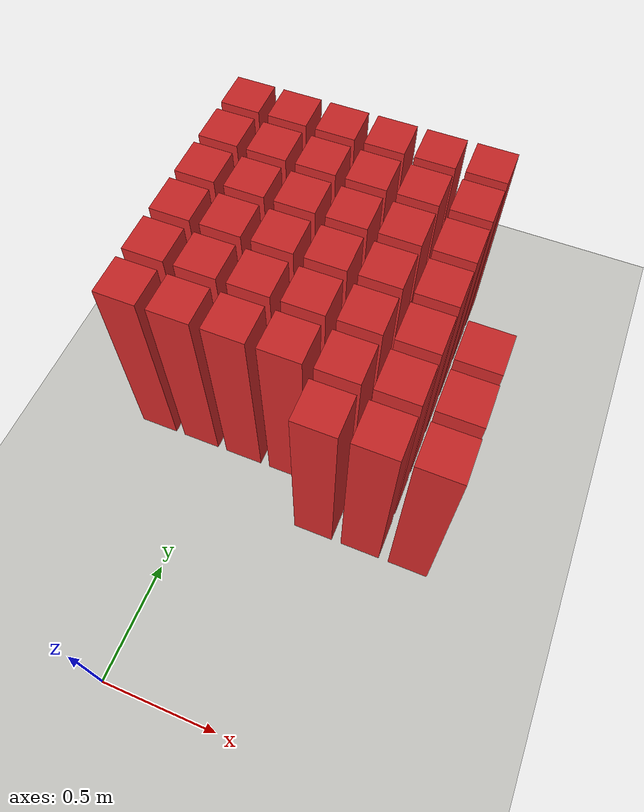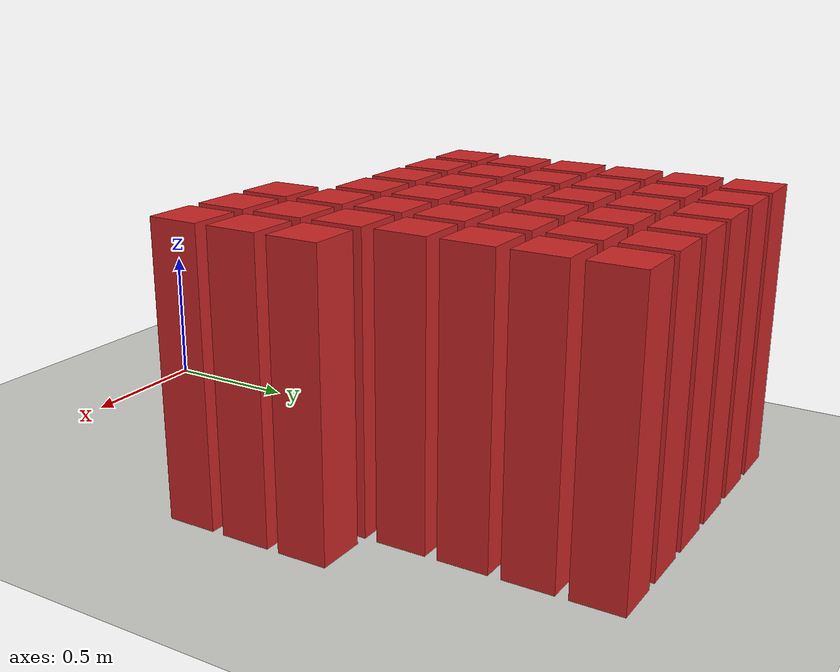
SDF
<sdf version="1.7">
 <world name="default">
  <model name="ground_plane">
   <static>1</static>
   <link name="link">
    <collision name="collision">
     <geometry><plane><normal>0 0 1</normal><size>100 100</size></plane></geometry>
     <surface>
      <contact><collide_bitmask>65535</collide_bitmask></contact>
      <friction><ode><mu>100</mu><mu2>50</mu2></ode></friction>
     </surface>
    </collision>
    <visual name="visual">
     <cast_shadows>0</cast_shadows>
     <geometry><plane><normal>0 0 1</normal><size>100 100</size></plane></geometry>
     <material>
      <script><uri>file://media/materials/scripts/gazebo.material</uri><name>Gazebo/CeilingTiled</name></script>
     </material>
    </visual>
   </link>
  </model>
  <model name="wall382">
   <link name="link">
    <pose>0 0 0.5 0 -0 0</pose>
    <inertial>
     <mass>0.5167</mass>
     <inertia>
      <ixx>0.000861167</ixx>
      <ixy>0</ixy>
      <ixz>0</ixz>
      <iyy>0.000861167</iyy>
      <iyz>0</iyz>
      <izz>0.000861167</izz>
     </inertia>
    </inertial>
    <collision name="collision">
     <geometry><box><size>0.21 0.21 1</size></box></geometry>
     <surface>
      <contact>
       <poissons_ratio>0.347</poissons_ratio>
       <elastic_modulus>8.8e+09</elastic_modulus>
       <ode><kp>100000</kp><kd>100</kd><max_vel>100</max_vel><min_depth>0.001</min_depth></ode>
      </contact>
      <friction>
       <torsional>
        <coefficient>1</coefficient>
        <use_patch_radius>0</use_patch_radius>
        <surface_radius>0.01</surface_radius>
       </torsional>
      </friction>
     </surface>
    </collision>
    <visual name="visual">
     <geometry><box><size>0.175 0.175 1</size></box></geometry>
     <material>
      <script><uri>file://media/materials/scripts/gazebo.material</uri><name>Gazebo/Red</name></script>
     </material>
    </visual>
   </link>
   <pose>0.543478 0.978261 0 0 -0 0</pose>
  </model>
  <model name="wall383">
   <link name="link">
    <pose>0 0 0.5 0 -0 0</pose>
    <inertial>
     <mass>0.5167</mass>
     <inertia>
      <ixx>0.000861167</ixx>
      <ixy>0</ixy>
      <ixz>0</ixz>
      <iyy>0.000861167</iyy>
      <iyz>0</iyz>
      <izz>0.000861167</izz>
     </inertia>
    </inertial>
    <collision name="collision">
     <geometry><box><size>0.21 0.21 1</size></box></geometry>
     <surface>
      <contact>
       <poissons_ratio>0.347</poissons_ratio>
       <elastic_modulus>8.8e+09</elastic_modulus>
       <ode><kp>100000</kp><kd>100</kd><max_vel>100</max_vel><min_depth>0.001</min_depth></ode>
      </contact>
      <friction>
       <torsional>
        <coefficient>1</coefficient>
        <use_patch_radius>0</use_patch_radius>
        <surface_radius>0.01</surface_radius>
       </torsional>
      </friction>
     </surface>
    </collision>
    <visual name="visual">
     <geometry><box><size>0.175 0.175 1</size></box></geometry>
     <material>
      <script><uri>file://media/materials/scripts/gazebo.material</uri><name>Gazebo/Red</name></script>
     </material>
    </visual>
   </link>
   <pose>0.76087 0.978261 0 0 -0 0</pose>
  </model>
  <model name="wall384">
   <link name="link">
    <pose>0 0 0.5 0 -0 0</pose>
    <inertial>
     <mass>0.5167</mass>
     <inertia>
      <ixx>0.000861167</ixx>
      <ixy>0</ixy>
      <ixz>0</ixz>
      <iyy>0.000861167</iyy>
      <iyz>0</iyz>
      <izz>0.000861167</izz>
     </inertia>
    </inertial>
    <collision name="collision">
     <geometry><box><size>0.21 0.21 1</size></box></geometry>
     <surface>
      <contact>
       <poissons_ratio>0.347</poissons_ratio>
       <elastic_modulus>8.8e+09</elastic_modulus>
       <ode><kp>100000</kp><kd>100</kd><max_vel>100</max_vel><min_depth>0.001</min_depth></ode>
      </contact>
      <friction>
       <torsional>
        <coefficient>1</coefficient>
        <use_patch_radius>0</use_patch_radius>
        <surface_radius>0.01</surface_radius>
       </torsional>
      </friction>
     </surface>
    </collision>
    <visual name="visual">
     <geometry><box><size>0.175 0.175 1</size></box></geometry>
     <material>
      <script><uri>file://media/materials/scripts/gazebo.material</uri><name>Gazebo/Red</name></script>
     </material>
    </visual>
   </link>
   <pose>0.978261 0.978261 0 0 -0 0</pose>
  </model>
  <model name="wall401">
   <link name="link">
    <pose>0 0 0.5 0 -0 0</pose>
    <inertial>
     <mass>0.5167</mass>
     <inertia>
      <ixx>0.000861167</ixx>
      <ixy>0</ixy>
      <ixz>0</ixz>
      <iyy>0.000861167</iyy>
      <iyz>0</iyz>
      <izz>0.000861167</izz>
     </inertia>
    </inertial>
    <collision name="collision">
     <geometry><box><size>0.21 0.21 1</size></box></geometry>
     <surface>
      <contact>
       <poissons_ratio>0.347</poissons_ratio>
       <elastic_modulus>8.8e+09</elastic_modulus>
       <ode><kp>100000</kp><kd>100</kd><max_vel>100</max_vel><min_depth>0.001</min_depth></ode>
      </contact>
      <friction>
       <torsional>
        <coefficient>1</coefficient>
        <use_patch_radius>0</use_patch_radius>
        <surface_radius>0.01</surface_radius>
       </torsional>
      </friction>
     </surface>
    </collision>
    <visual name="visual">
     <geometry><box><size>0.175 0.175 1</size></box></geometry>
     <material>
      <script><uri>file://media/materials/scripts/gazebo.material</uri><name>Gazebo/Red</name></script>
     </material>
    </visual>
   </link>
   <pose>-0.326087 1.19565 0 0 -0 0</pose>
  </model>
  <model name="wall402">
   <link name="link">
    <pose>0 0 0.5 0 -0 0</pose>
    <inertial>
     <mass>0.5167</mass>
     <inertia>
      <ixx>0.000861167</ixx>
      <ixy>0</ixy>
      <ixz>0</ixz>
      <iyy>0.000861167</iyy>
      <iyz>0</iyz>
      <izz>0.000861167</izz>
     </inertia>
    </inertial>
    <collision name="collision">
     <geometry><box><size>0.21 0.21 1</size></box></geometry>
     <surface>
      <contact>
       <poissons_ratio>0.347</poissons_ratio>
       <elastic_modulus>8.8e+09</elastic_modulus>
       <ode><kp>100000</kp><kd>100</kd><max_vel>100</max_vel><min_depth>0.001</min_depth></ode>
      </contact>
      <friction>
       <torsional>
        <coefficient>1</coefficient>
        <use_patch_radius>0</use_patch_radius>
        <surface_radius>0.01</surface_radius>
       </torsional>
      </friction>
     </surface>
    </collision>
    <visual name="visual">
     <geometry><box><size>0.175 0.175 1</size></box></geometry>
     <material>
      <script><uri>file://media/materials/scripts/gazebo.material</uri><name>Gazebo/Red</name></script>
     </material>
    </visual>
   </link>
   <pose>-0.108696 1.19565 0 0 -0 0</pose>
  </model>
  <model name="wall403">
   <link name="link">
    <pose>0 0 0.5 0 -0 0</pose>
    <inertial>
     <mass>0.5167</mass>
     <inertia>
      <ixx>0.000861167</ixx>
      <ixy>0</ixy>
      <ixz>0</ixz>
      <iyy>0.000861167</iyy>
      <iyz>0</iyz>
      <izz>0.000861167</izz>
     </inertia>
    </inertial>
    <collision name="collision">
     <geometry><box><size>0.21 0.21 1</size></box></geometry>
     <surface>
      <contact>
       <poissons_ratio>0.347</poissons_ratio>
       <elastic_modulus>8.8e+09</elastic_modulus>
       <ode><kp>100000</kp><kd>100</kd><max_vel>100</max_vel><min_depth>0.001</min_depth></ode>
      </contact>
      <friction>
       <torsional>
        <coefficient>1</coefficient>
        <use_patch_radius>0</use_patch_radius>
        <surface_radius>0.01</surface_radius>
       </torsional>
      </friction>
     </surface>
    </collision>
    <visual name="visual">
     <geometry><box><size>0.175 0.175 1</size></box></geometry>
     <material>
      <script><uri>file://media/materials/scripts/gazebo.material</uri><name>Gazebo/Red</name></script>
     </material>
    </visual>
   </link>
   <pose>0.108696 1.19565 0 0 -0 0</pose>
  </model>
  <model name="wall404">
   <link name="link">
    <pose>0 0 0.5 0 -0 0</pose>
    <inertial>
     <mass>0.5167</mass>
     <inertia>
      <ixx>0.000861167</ixx>
      <ixy>0</ixy>
      <ixz>0</ixz>
      <iyy>0.000861167</iyy>
      <iyz>0</iyz>
      <izz>0.000861167</izz>
     </inertia>
    </inertial>
    <collision name="collision">
     <geometry><box><size>0.21 0.21 1</size></box></geometry>
     <surface>
      <contact>
       <poissons_ratio>0.347</poissons_ratio>
       <elastic_modulus>8.8e+09</elastic_modulus>
       <ode><kp>100000</kp><kd>100</kd><max_vel>100</max_vel><min_depth>0.001</min_depth></ode>
      </contact>
      <friction>
       <torsional>
        <coefficient>1</coefficient>
        <use_patch_radius>0</use_patch_radius>
        <surface_radius>0.01</surface_radius>
       </torsional>
      </friction>
     </surface>
    </collision>
    <visual name="visual">
     <geometry><box><size>0.175 0.175 1</size></box></geometry>
     <material>
      <script><uri>file://media/materials/scripts/gazebo.material</uri><name>Gazebo/Red</name></script>
     </material>
    </visual>
   </link>
   <pose>0.326087 1.19565 0 0 -0 0</pose>
  </model>
  <model name="wall405">
   <link name="link">
    <pose>0 0 0.5 0 -0 0</pose>
    <inertial>
     <mass>0.5167</mass>
     <inertia>
      <ixx>0.000861167</ixx>
      <ixy>0</ixy>
      <ixz>0</ixz>
      <iyy>0.000861167</iyy>
      <iyz>0</iyz>
      <izz>0.000861167</izz>
     </inertia>
    </inertial>
    <collision name="collision">
     <geometry><box><size>0.21 0.21 1</size></box></geometry>
     <surface>
      <contact>
       <poissons_ratio>0.347</poissons_ratio>
       <elastic_modulus>8.8e+09</elastic_modulus>
       <ode><kp>100000</kp><kd>100</kd><max_vel>100</max_vel><min_depth>0.001</min_depth></ode>
      </contact>
      <friction>
       <torsional>
        <coefficient>1</coefficient>
        <use_patch_radius>0</use_patch_radius>
        <surface_radius>0.01</surface_radius>
       </torsional>
      </friction>
     </surface>
    </collision>
    <visual name="visual">
     <geometry><box><size>0.175 0.175 1</size></box></geometry>
     <material>
      <script><uri>file://media/materials/scripts/gazebo.material</uri><name>Gazebo/Red</name></script>
     </material>
    </visual>
   </link>
   <pose>0.543478 1.19565 0 0 -0 0</pose>
  </model>
  <model name="wall406">
   <link name="link">
    <pose>0 0 0.5 0 -0 0</pose>
    <inertial>
     <mass>0.5167</mass>
     <inertia>
      <ixx>0.000861167</ixx>
      <ixy>0</ixy>
      <ixz>0</ixz>
      <iyy>0.000861167</iyy>
      <iyz>0</iyz>
      <izz>0.000861167</izz>
     </inertia>
    </inertial>
    <collision name="collision">
     <geometry><box><size>0.21 0.21 1</size></box></geometry>
     <surface>
      <contact>
       <poissons_ratio>0.347</poissons_ratio>
       <elastic_modulus>8.8e+09</elastic_modulus>
       <ode><kp>100000</kp><kd>100</kd><max_vel>100</max_vel><min_depth>0.001</min_depth></ode>
      </contact>
      <friction>
       <torsional>
        <coefficient>1</coefficient>
        <use_patch_radius>0</use_patch_radius>
        <surface_radius>0.01</surface_radius>
       </torsional>
      </friction>
     </surface>
    </collision>
    <visual name="visual">
     <geometry><box><size>0.175 0.175 1</size></box></geometry>
     <material>
      <script><uri>file://media/materials/scripts/gazebo.material</uri><name>Gazebo/Red</name></script>
     </material>
    </visual>
   </link>
   <pose>0.76087 1.19565 0 0 -0 0</pose>
  </model>
  <model name="wall407">
   <link name="link">
    <pose>0 0 0.5 0 -0 0</pose>
    <inertial>
     <mass>0.5167</mass>
     <inertia>
      <ixx>0.000861167</ixx>
      <ixy>0</ixy>
      <ixz>0</ixz>
      <iyy>0.000861167</iyy>
      <iyz>0</iyz>
      <izz>0.000861167</izz>
     </inertia>
    </inertial>
    <collision name="collision">
     <geometry><box><size>0.21 0.21 1</size></box></geometry>
     <surface>
      <contact>
       <poissons_ratio>0.347</poissons_ratio>
       <elastic_modulus>8.8e+09</elastic_modulus>
       <ode><kp>100000</kp><kd>100</kd><max_vel>100</max_vel><min_depth>0.001</min_depth></ode>
      </contact>
      <friction>
       <torsional>
        <coefficient>1</coefficient>
        <use_patch_radius>0</use_patch_radius>
        <surface_radius>0.01</surface_radius>
       </torsional>
      </friction>
     </surface>
    </collision>
    <visual name="visual">
     <geometry><box><size>0.175 0.175 1</size></box></geometry>
     <material>
      <script><uri>file://media/materials/scripts/gazebo.material</uri><name>Gazebo/Red</name></script>
     </material>
    </visual>
   </link>
   <pose>0.978261 1.19565 0 0 -0 0</pose>
  </model>
  <model name="wall424">
   <link name="link">
    <pose>0 0 0.5 0 -0 0</pose>
    <inertial>
     <mass>0.5167</mass>
     <inertia>
      <ixx>0.000861167</ixx>
      <ixy>0</ixy>
      <ixz>0</ixz>
      <iyy>0.000861167</iyy>
      <iyz>0</iyz>
      <izz>0.000861167</izz>
     </inertia>
    </inertial>
    <collision name="collision">
     <geometry><box><size>0.21 0.21 1</size></box></geometry>
     <surface>
      <contact>
       <poissons_ratio>0.347</poissons_ratio>
       <elastic_modulus>8.8e+09</elastic_modulus>
       <ode><kp>100000</kp><kd>100</kd><max_vel>100</max_vel><min_depth>0.001</min_depth></ode>
      </contact>
      <friction>
       <torsional>
        <coefficient>1</coefficient>
        <use_patch_radius>0</use_patch_radius>
        <surface_radius>0.01</surface_radius>
       </torsional>
      </friction>
     </surface>
    </collision>
    <visual name="visual">
     <geometry><box><size>0.175 0.175 1</size></box></geometry>
     <material>
      <script><uri>file://media/materials/scripts/gazebo.material</uri><name>Gazebo/Red</name></script>
     </material>
    </visual>
   </link>
   <pose>-0.326087 1.41304 0 0 -0 0</pose>
  </model>
  <model name="wall425">
   <link name="link">
    <pose>0 0 0.5 0 -0 0</pose>
    <inertial>
     <mass>0.5167</mass>
     <inertia>
      <ixx>0.000861167</ixx>
      <ixy>0</ixy>
      <ixz>0</ixz>
      <iyy>0.000861167</iyy>
      <iyz>0</iyz>
      <izz>0.000861167</izz>
     </inertia>
    </inertial>
    <collision name="collision">
     <geometry><box><size>0.21 0.21 1</size></box></geometry>
     <surface>
      <contact>
       <poissons_ratio>0.347</poissons_ratio>
       <elastic_modulus>8.8e+09</elastic_modulus>
       <ode><kp>100000</kp><kd>100</kd><max_vel>100</max_vel><min_depth>0.001</min_depth></ode>
      </contact>
      <friction>
       <torsional>
        <coefficient>1</coefficient>
        <use_patch_radius>0</use_patch_radius>
        <surface_radius>0.01</surface_radius>
       </torsional>
      </friction>
     </surface>
    </collision>
    <visual name="visual">
     <geometry><box><size>0.175 0.175 1</size></box></geometry>
     <material>
      <script><uri>file://media/materials/scripts/gazebo.material</uri><name>Gazebo/Red</name></script>
     </material>
    </visual>
   </link>
   <pose>-0.108696 1.41304 0 0 -0 0</pose>
  </model>
  <model name="wall426">
   <link name="link">
    <pose>0 0 0.5 0 -0 0</pose>
    <inertial>
     <mass>0.5167</mass>
     <inertia>
      <ixx>0.000861167</ixx>
      <ixy>0</ixy>
      <ixz>0</ixz>
      <iyy>0.000861167</iyy>
      <iyz>0</iyz>
      <izz>0.000861167</izz>
     </inertia>
    </inertial>
    <collision name="collision">
     <geometry><box><size>0.21 0.21 1</size></box></geometry>
     <surface>
      <contact>
       <poissons_ratio>0.347</poissons_ratio>
       <elastic_modulus>8.8e+09</elastic_modulus>
       <ode><kp>100000</kp><kd>100</kd><max_vel>100</max_vel><min_depth>0.001</min_depth></ode>
      </contact>
      <friction>
       <torsional>
        <coefficient>1</coefficient>
        <use_patch_radius>0</use_patch_radius>
        <surface_radius>0.01</surface_radius>
       </torsional>
      </friction>
     </surface>
    </collision>
    <visual name="visual">
     <geometry><box><size>0.175 0.175 1</size></box></geometry>
     <material>
      <script><uri>file://media/materials/scripts/gazebo.material</uri><name>Gazebo/Red</name></script>
     </material>
    </visual>
   </link>
   <pose>0.108696 1.41304 0 0 -0 0</pose>
  </model>
  <model name="wall427">
   <link name="link">
    <pose>0 0 0.5 0 -0 0</pose>
    <inertial>
     <mass>0.5167</mass>
     <inertia>
      <ixx>0.000861167</ixx>
      <ixy>0</ixy>
      <ixz>0</ixz>
      <iyy>0.000861167</iyy>
      <iyz>0</iyz>
      <izz>0.000861167</izz>
     </inertia>
    </inertial>
    <collision name="collision">
     <geometry><box><size>0.21 0.21 1</size></box></geometry>
     <surface>
      <contact>
       <poissons_ratio>0.347</poissons_ratio>
       <elastic_modulus>8.8e+09</elastic_modulus>
       <ode><kp>100000</kp><kd>100</kd><max_vel>100</max_vel><min_depth>0.001</min_depth></ode>
      </contact>
      <friction>
       <torsional>
        <coefficient>1</coefficient>
        <use_patch_radius>0</use_patch_radius>
        <surface_radius>0.01</surface_radius>
       </torsional>
      </friction>
     </surface>
    </collision>
    <visual name="visual">
     <geometry><box><size>0.175 0.175 1</size></box></geometry>
     <material>
      <script><uri>file://media/materials/scripts/gazebo.material</uri><name>Gazebo/Red</name></script>
     </material>
    </visual>
   </link>
   <pose>0.326087 1.41304 0 0 -0 0</pose>
  </model>
  <model name="wall428">
   <link name="link">
    <pose>0 0 0.5 0 -0 0</pose>
    <inertial>
     <mass>0.5167</mass>
     <inertia>
      <ixx>0.000861167</ixx>
      <ixy>0</ixy>
      <ixz>0</ixz>
      <iyy>0.000861167</iyy>
      <iyz>0</iyz>
      <izz>0.000861167</izz>
     </inertia>
    </inertial>
    <collision name="collision">
     <geometry><box><size>0.21 0.21 1</size></box></geometry>
     <surface>
      <contact>
       <poissons_ratio>0.347</poissons_ratio>
       <elastic_modulus>8.8e+09</elastic_modulus>
       <ode><kp>100000</kp><kd>100</kd><max_vel>100</max_vel><min_depth>0.001</min_depth></ode>
      </contact>
      <friction>
       <torsional>
        <coefficient>1</coefficient>
        <use_patch_radius>0</use_patch_radius>
        <surface_radius>0.01</surface_radius>
       </torsional>
      </friction>
     </surface>
    </collision>
    <visual name="visual">
     <geometry><box><size>0.175 0.175 1</size></box></geometry>
     <material>
      <script><uri>file://media/materials/scripts/gazebo.material</uri><name>Gazebo/Red</name></script>
     </material>
    </visual>
   </link>
   <pose>0.543478 1.41304 0 0 -0 0</pose>
  </model>
  <model name="wall429">
   <link name="link">
    <pose>0 0 0.5 0 -0 0</pose>
    <inertial>
     <mass>0.5167</mass>
     <inertia>
      <ixx>0.000861167</ixx>
      <ixy>0</ixy>
      <ixz>0</ixz>
      <iyy>0.000861167</iyy>
      <iyz>0</iyz>
      <izz>0.000861167</izz>
     </inertia>
    </inertial>
    <collision name="collision">
     <geometry><box><size>0.21 0.21 1</size></box></geometry>
     <surface>
      <contact>
       <poissons_ratio>0.347</poissons_ratio>
       <elastic_modulus>8.8e+09</elastic_modulus>
       <ode><kp>100000</kp><kd>100</kd><max_vel>100</max_vel><min_depth>0.001</min_depth></ode>
      </contact>
      <friction>
       <torsional>
        <coefficient>1</coefficient>
        <use_patch_radius>0</use_patch_radius>
        <surface_radius>0.01</surface_radius>
       </torsional>
      </friction>
     </surface>
    </collision>
    <visual name="visual">
     <geometry><box><size>0.175 0.175 1</size></box></geometry>
     <material>
      <script><uri>file://media/materials/scripts/gazebo.material</uri><name>Gazebo/Red</name></script>
     </material>
    </visual>
   </link>
   <pose>0.76087 1.41304 0 0 -0 0</pose>
  </model>
  <model name="wall430">
   <link name="link">
    <pose>0 0 0.5 0 -0 0</pose>
    <inertial>
     <mass>0.5167</mass>
     <inertia>
      <ixx>0.000861167</ixx>
      <ixy>0</ixy>
      <ixz>0</ixz>
      <iyy>0.000861167</iyy>
      <iyz>0</iyz>
      <izz>0.000861167</izz>
     </inertia>
    </inertial>
    <collision name="collision">
     <geometry><box><size>0.21 0.21 1</size></box></geometry>
     <surface>
      <contact>
       <poissons_ratio>0.347</poissons_ratio>
       <elastic_modulus>8.8e+09</elastic_modulus>
       <ode><kp>100000</kp><kd>100</kd><max_vel>100</max_vel><min_depth>0.001</min_depth></ode>
      </contact>
      <friction>
       <torsional>
        <coefficient>1</coefficient>
        <use_patch_radius>0</use_patch_radius>
        <surface_radius>0.01</surface_radius>
       </torsional>
      </friction>
     </surface>
    </collision>
    <visual name="visual">
     <geometry><box><size>0.175 0.175 1</size></box></geometry>
     <material>
      <script><uri>file://media/materials/scripts/gazebo.material</uri><name>Gazebo/Red</name></script>
     </material>
    </visual>
   </link>
   <pose>0.978261 1.41304 0 0 -0 0</pose>
  </model>
  <model name="wall447">
   <link name="link">
    <pose>0 0 0.5 0 -0 0</pose>
    <inertial>
     <mass>0.5167</mass>
     <inertia>
      <ixx>0.000861167</ixx>
      <ixy>0</ixy>
      <ixz>0</ixz>
      <iyy>0.000861167</iyy>
      <iyz>0</iyz>
      <izz>0.000861167</izz>
     </inertia>
    </inertial>
    <collision name="collision">
     <geometry><box><size>0.21 0.21 1</size></box></geometry>
     <surface>
      <contact>
       <poissons_ratio>0.347</poissons_ratio>
       <elastic_modulus>8.8e+09</elastic_modulus>
       <ode><kp>100000</kp><kd>100</kd><max_vel>100</max_vel><min_depth>0.001</min_depth></ode>
      </contact>
      <friction>
       <torsional>
        <coefficient>1</coefficient>
        <use_patch_radius>0</use_patch_radius>
        <surface_radius>0.01</surface_radius>
       </torsional>
      </friction>
     </surface>
    </collision>
    <visual name="visual">
     <geometry><box><size>0.175 0.175 1</size></box></geometry>
     <material>
      <script><uri>file://media/materials/scripts/gazebo.material</uri><name>Gazebo/Red</name></script>
     </material>
    </visual>
   </link>
   <pose>-0.326087 1.63043 0 0 -0 0</pose>
  </model>
  <model name="wall448">
   <link name="link">
    <pose>0 0 0.5 0 -0 0</pose>
    <inertial>
     <mass>0.5167</mass>
     <inertia>
      <ixx>0.000861167</ixx>
      <ixy>0</ixy>
      <ixz>0</ixz>
      <iyy>0.000861167</iyy>
      <iyz>0</iyz>
      <izz>0.000861167</izz>
     </inertia>
    </inertial>
    <collision name="collision">
     <geometry><box><size>0.21 0.21 1</size></box></geometry>
     <surface>
      <contact>
       <poissons_ratio>0.347</poissons_ratio>
       <elastic_modulus>8.8e+09</elastic_modulus>
       <ode><kp>100000</kp><kd>100</kd><max_vel>100</max_vel><min_depth>0.001</min_depth></ode>
      </contact>
      <friction>
       <torsional>
        <coefficient>1</coefficient>
        <use_patch_radius>0</use_patch_radius>
        <surface_radius>0.01</surface_radius>
       </torsional>
      </friction>
     </surface>
    </collision>
    <visual name="visual">
     <geometry><box><size>0.175 0.175 1</size></box></geometry>
     <material>
      <script><uri>file://media/materials/scripts/gazebo.material</uri><name>Gazebo/Red</name></script>
     </material>
    </visual>
   </link>
   <pose>-0.108696 1.63043 0 0 -0 0</pose>
  </model>
  <model name="wall449">
   <link name="link">
    <pose>0 0 0.5 0 -0 0</pose>
    <inertial>
     <mass>0.5167</mass>
     <inertia>
      <ixx>0.000861167</ixx>
      <ixy>0</ixy>
      <ixz>0</ixz>
      <iyy>0.000861167</iyy>
      <iyz>0</iyz>
      <izz>0.000861167</izz>
     </inertia>
    </inertial>
    <collision name="collision">
     <geometry><box><size>0.21 0.21 1</size></box></geometry>
     <surface>
      <contact>
       <poissons_ratio>0.347</poissons_ratio>
       <elastic_modulus>8.8e+09</elastic_modulus>
       <ode><kp>100000</kp><kd>100</kd><max_vel>100</max_vel><min_depth>0.001</min_depth></ode>
      </contact>
      <friction>
       <torsional>
        <coefficient>1</coefficient>
        <use_patch_radius>0</use_patch_radius>
        <surface_radius>0.01</surface_radius>
       </torsional>
      </friction>
     </surface>
    </collision>
    <visual name="visual">
     <geometry><box><size>0.175 0.175 1</size></box></geometry>
     <material>
      <script><uri>file://media/materials/scripts/gazebo.material</uri><name>Gazebo/Red</name></script>
     </material>
    </visual>
   </link>
   <pose>0.108696 1.63043 0 0 -0 0</pose>
  </model>
  <model name="wall450">
   <link name="link">
    <pose>0 0 0.5 0 -0 0</pose>
    <inertial>
     <mass>0.5167</mass>
     <inertia>
      <ixx>0.000861167</ixx>
      <ixy>0</ixy>
      <ixz>0</ixz>
      <iyy>0.000861167</iyy>
      <iyz>0</iyz>
      <izz>0.000861167</izz>
     </inertia>
    </inertial>
    <collision name="collision">
     <geometry><box><size>0.21 0.21 1</size></box></geometry>
     <surface>
      <contact>
       <poissons_ratio>0.347</poissons_ratio>
       <elastic_modulus>8.8e+09</elastic_modulus>
       <ode><kp>100000</kp><kd>100</kd><max_vel>100</max_vel><min_depth>0.001</min_depth></ode>
      </contact>
      <friction>
       <torsional>
        <coefficient>1</coefficient>
        <use_patch_radius>0</use_patch_radius>
        <surface_radius>0.01</surface_radius>
       </torsional>
      </friction>
     </surface>
    </collision>
    <visual name="visual">
     <geometry><box><size>0.175 0.175 1</size></box></geometry>
     <material>
      <script><uri>file://media/materials/scripts/gazebo.material</uri><name>Gazebo/Red</name></script>
     </material>
    </visual>
   </link>
   <pose>0.326087 1.63043 0 0 -0 0</pose>
  </model>
  <model name="wall451">
   <link name="link">
    <pose>0 0 0.5 0 -0 0</pose>
    <inertial>
     <mass>0.5167</mass>
     <inertia>
      <ixx>0.000861167</ixx>
      <ixy>0</ixy>
      <ixz>0</ixz>
      <iyy>0.000861167</iyy>
      <iyz>0</iyz>
      <izz>0.000861167</izz>
     </inertia>
    </inertial>
    <collision name="collision">
     <geometry><box><size>0.21 0.21 1</size></box></geometry>
     <surface>
      <contact>
       <poissons_ratio>0.347</poissons_ratio>
       <elastic_modulus>8.8e+09</elastic_modulus>
       <ode><kp>100000</kp><kd>100</kd><max_vel>100</max_vel><min_depth>0.001</min_depth></ode>
      </contact>
      <friction>
       <torsional>
        <coefficient>1</coefficient>
        <use_patch_radius>0</use_patch_radius>
        <surface_radius>0.01</surface_radius>
       </torsional>
      </friction>
     </surface>
    </collision>
    <visual name="visual">
     <geometry><box><size>0.175 0.175 1</size></box></geometry>
     <material>
      <script><uri>file://media/materials/scripts/gazebo.material</uri><name>Gazebo/Red</name></script>
     </material>
    </visual>
   </link>
   <pose>0.543478 1.63043 0 0 -0 0</pose>
  </model>
  <model name="wall452">
   <link name="link">
    <pose>0 0 0.5 0 -0 0</pose>
    <inertial>
     <mass>0.5167</mass>
     <inertia>
      <ixx>0.000861167</ixx>
      <ixy>0</ixy>
      <ixz>0</ixz>
      <iyy>0.000861167</iyy>
      <iyz>0</iyz>
      <izz>0.000861167</izz>
     </inertia>
    </inertial>
    <collision name="collision">
     <geometry><box><size>0.21 0.21 1</size></box></geometry>
     <surface>
      <contact>
       <poissons_ratio>0.347</poissons_ratio>
       <elastic_modulus>8.8e+09</elastic_modulus>
       <ode><kp>100000</kp><kd>100</kd><max_vel>100</max_vel><min_depth>0.001</min_depth></ode>
      </contact>
      <friction>
       <torsional>
        <coefficient>1</coefficient>
        <use_patch_radius>0</use_patch_radius>
        <surface_radius>0.01</surface_radius>
       </torsional>
      </friction>
     </surface>
    </collision>
    <visual name="visual">
     <geometry><box><size>0.175 0.175 1</size></box></geometry>
     <material>
      <script><uri>file://media/materials/scripts/gazebo.material</uri><name>Gazebo/Red</name></script>
     </material>
    </visual>
   </link>
   <pose>0.76087 1.63043 0 0 -0 0</pose>
  </model>
  <model name="wall470">
   <link name="link">
    <pose>0 0 0.5 0 -0 0</pose>
    <inertial>
     <mass>0.5167</mass>
     <inertia>
      <ixx>0.000861167</ixx>
      <ixy>0</ixy>
      <ixz>0</ixz>
      <iyy>0.000861167</iyy>
      <iyz>0</iyz>
      <izz>0.000861167</izz>
     </inertia>
    </inertial>
    <collision name="collision">
     <geometry><box><size>0.21 0.21 1</size></box></geometry>
     <surface>
      <contact>
       <poissons_ratio>0.347</poissons_ratio>
       <elastic_modulus>8.8e+09</elastic_modulus>
       <ode><kp>100000</kp><kd>100</kd><max_vel>100</max_vel><min_depth>0.001</min_depth></ode>
      </contact>
      <friction>
       <torsional>
        <coefficient>1</coefficient>
        <use_patch_radius>0</use_patch_radius>
        <surface_radius>0.01</surface_radius>
       </torsional>
      </friction>
     </surface>
    </collision>
    <visual name="visual">
     <geometry><box><size>0.175 0.175 1</size></box></geometry>
     <material>
      <script><uri>file://media/materials/scripts/gazebo.material</uri><name>Gazebo/Red</name></script>
     </material>
    </visual>
   </link>
   <pose>-0.326087 1.84783 0 0 -0 0</pose>
  </model>
  <model name="wall471">
   <link name="link">
    <pose>0 0 0.5 0 -0 0</pose>
    <inertial>
     <mass>0.5167</mass>
     <inertia>
      <ixx>0.000861167</ixx>
      <ixy>0</ixy>
      <ixz>0</ixz>
      <iyy>0.000861167</iyy>
      <iyz>0</iyz>
      <izz>0.000861167</izz>
     </inertia>
    </inertial>
    <collision name="collision">
     <geometry><box><size>0.21 0.21 1</size></box></geometry>
     <surface>
      <contact>
       <poissons_ratio>0.347</poissons_ratio>
       <elastic_modulus>8.8e+09</elastic_modulus>
       <ode><kp>100000</kp><kd>100</kd><max_vel>100</max_vel><min_depth>0.001</min_depth></ode>
      </contact>
      <friction>
       <torsional>
        <coefficient>1</coefficient>
        <use_patch_radius>0</use_patch_radius>
        <surface_radius>0.01</surface_radius>
       </torsional>
      </friction>
     </surface>
    </collision>
    <visual name="visual">
     <geometry><box><size>0.175 0.175 1</size></box></geometry>
     <material>
      <script><uri>file://media/materials/scripts/gazebo.material</uri><name>Gazebo/Red</name></script>
     </material>
    </visual>
   </link>
   <pose>-0.108696 1.84783 0 0 -0 0</pose>
  </model>
  <model name="wall472">
   <link name="link">
    <pose>0 0 0.5 0 -0 0</pose>
    <inertial>
     <mass>0.5167</mass>
     <inertia>
      <ixx>0.000861167</ixx>
      <ixy>0</ixy>
      <ixz>0</ixz>
      <iyy>0.000861167</iyy>
      <iyz>0</iyz>
      <izz>0.000861167</izz>
     </inertia>
    </inertial>
    <collision name="collision">
     <geometry><box><size>0.21 0.21 1</size></box></geometry>
     <surface>
      <contact>
       <poissons_ratio>0.347</poissons_ratio>
       <elastic_modulus>8.8e+09</elastic_modulus>
       <ode><kp>100000</kp><kd>100</kd><max_vel>100</max_vel><min_depth>0.001</min_depth></ode>
      </contact>
      <friction>
       <torsional>
        <coefficient>1</coefficient>
        <use_patch_radius>0</use_patch_radius>
        <surface_radius>0.01</surface_radius>
       </torsional>
      </friction>
     </surface>
    </collision>
    <visual name="visual">
     <geometry><box><size>0.175 0.175 1</size></box></geometry>
     <material>
      <script><uri>file://media/materials/scripts/gazebo.material</uri><name>Gazebo/Red</name></script>
     </material>
    </visual>
   </link>
   <pose>0.108696 1.84783 0 0 -0 0</pose>
  </model>
  <model name="wall473">
   <link name="link">
    <pose>0 0 0.5 0 -0 0</pose>
    <inertial>
     <mass>0.5167</mass>
     <inertia>
      <ixx>0.000861167</ixx>
      <ixy>0</ixy>
      <ixz>0</ixz>
      <iyy>0.000861167</iyy>
      <iyz>0</iyz>
      <izz>0.000861167</izz>
     </inertia>
    </inertial>
    <collision name="collision">
     <geometry><box><size>0.21 0.21 1</size></box></geometry>
     <surface>
      <contact>
       <poissons_ratio>0.347</poissons_ratio>
       <elastic_modulus>8.8e+09</elastic_modulus>
       <ode><kp>100000</kp><kd>100</kd><max_vel>100</max_vel><min_depth>0.001</min_depth></ode>
      </contact>
      <friction>
       <torsional>
        <coefficient>1</coefficient>
        <use_patch_radius>0</use_patch_radius>
        <surface_radius>0.01</surface_radius>
       </torsional>
      </friction>
     </surface>
    </collision>
    <visual name="visual">
     <geometry><box><size>0.175 0.175 1</size></box></geometry>
     <material>
      <script><uri>file://media/materials/scripts/gazebo.material</uri><name>Gazebo/Red</name></script>
     </material>
    </visual>
   </link>
   <pose>0.326087 1.84783 0 0 -0 0</pose>
  </model>
  <model name="wall474">
   <link name="link">
    <pose>0 0 0.5 0 -0 0</pose>
    <inertial>
     <mass>0.5167</mass>
     <inertia>
      <ixx>0.000861167</ixx>
      <ixy>0</ixy>
      <ixz>0</ixz>
      <iyy>0.000861167</iyy>
      <iyz>0</iyz>
      <izz>0.000861167</izz>
     </inertia>
    </inertial>
    <collision name="collision">
     <geometry><box><size>0.21 0.21 1</size></box></geometry>
     <surface>
      <contact>
       <poissons_ratio>0.347</poissons_ratio>
       <elastic_modulus>8.8e+09</elastic_modulus>
       <ode><kp>100000</kp><kd>100</kd><max_vel>100</max_vel><min_depth>0.001</min_depth></ode>
      </contact>
      <friction>
       <torsional>
        <coefficient>1</coefficient>
        <use_patch_radius>0</use_patch_radius>
        <surface_radius>0.01</surface_radius>
       </torsional>
      </friction>
     </surface>
    </collision>
    <visual name="visual">
     <geometry><box><size>0.175 0.175 1</size></box></geometry>
     <material>
      <script><uri>file://media/materials/scripts/gazebo.material</uri><name>Gazebo/Red</name></script>
     </material>
    </visual>
   </link>
   <pose>0.543478 1.84783 0 0 -0 0</pose>
  </model>
  <model name="wall475">
   <link name="link">
    <pose>0 0 0.5 0 -0 0</pose>
    <inertial>
     <mass>0.5167</mass>
     <inertia>
      <ixx>0.000861167</ixx>
      <ixy>0</ixy>
      <ixz>0</ixz>
      <iyy>0.000861167</iyy>
      <iyz>0</iyz>
      <izz>0.000861167</izz>
     </inertia>
    </inertial>
    <collision name="collision">
     <geometry><box><size>0.21 0.21 1</size></box></geometry>
     <surface>
      <contact>
       <poissons_ratio>0.347</poissons_ratio>
       <elastic_modulus>8.8e+09</elastic_modulus>
       <ode><kp>100000</kp><kd>100</kd><max_vel>100</max_vel><min_depth>0.001</min_depth></ode>
      </contact>
      <friction>
       <torsional>
        <coefficient>1</coefficient>
        <use_patch_radius>0</use_patch_radius>
        <surface_radius>0.01</surface_radius>
       </torsional>
      </friction>
     </surface>
    </collision>
    <visual name="visual">
     <geometry><box><size>0.175 0.175 1</size></box></geometry>
     <material>
      <script><uri>file://media/materials/scripts/gazebo.material</uri><name>Gazebo/Red</name></script>
     </material>
    </visual>
   </link>
   <pose>0.76087 1.84783 0 0 -0 0</pose>
  </model>
  <model name="wall493">
   <link name="link">
    <pose>0 0 0.5 0 -0 0</pose>
    <inertial>
     <mass>0.5167</mass>
     <inertia>
      <ixx>0.000861167</ixx>
      <ixy>0</ixy>
      <ixz>0</ixz>
      <iyy>0.000861167</iyy>
      <iyz>0</iyz>
      <izz>0.000861167</izz>
     </inertia>
    </inertial>
    <collision name="collision">
     <geometry><box><size>0.21 0.21 1</size></box></geometry>
     <surface>
      <contact>
       <poissons_ratio>0.347</poissons_ratio>
       <elastic_modulus>8.8e+09</elastic_modulus>
       <ode><kp>100000</kp><kd>100</kd><max_vel>100</max_vel><min_depth>0.001</min_depth></ode>
      </contact>
      <friction>
       <torsional>
        <coefficient>1</coefficient>
        <use_patch_radius>0</use_patch_radius>
        <surface_radius>0.01</surface_radius>
       </torsional>
      </friction>
     </surface>
    </collision>
    <visual name="visual">
     <geometry><box><size>0.175 0.175 1</size></box></geometry>
     <material>
      <script><uri>file://media/materials/scripts/gazebo.material</uri><name>Gazebo/Red</name></script>
     </material>
    </visual>
   </link>
   <pose>-0.326087 2.06522 0 0 -0 0</pose>
  </model>
  <model name="wall494">
   <link name="link">
    <pose>0 0 0.5 0 -0 0</pose>
    <inertial>
     <mass>0.5167</mass>
     <inertia>
      <ixx>0.000861167</ixx>
      <ixy>0</ixy>
      <ixz>0</ixz>
      <iyy>0.000861167</iyy>
      <iyz>0</iyz>
      <izz>0.000861167</izz>
     </inertia>
    </inertial>
    <collision name="collision">
     <geometry><box><size>0.21 0.21 1</size></box></geometry>
     <surface>
      <contact>
       <poissons_ratio>0.347</poissons_ratio>
       <elastic_modulus>8.8e+09</elastic_modulus>
       <ode><kp>100000</kp><kd>100</kd><max_vel>100</max_vel><min_depth>0.001</min_depth></ode>
      </contact>
      <friction>
       <torsional>
        <coefficient>1</coefficient>
        <use_patch_radius>0</use_patch_radius>
        <surface_radius>0.01</surface_radius>
       </torsional>
      </friction>
     </surface>
    </collision>
    <visual name="visual">
     <geometry><box><size>0.175 0.175 1</size></box></geometry>
     <material>
      <script><uri>file://media/materials/scripts/gazebo.material</uri><name>Gazebo/Red</name></script>
     </material>
    </visual>
   </link>
   <pose>-0.108696 2.06522 0 0 -0 0</pose>
  </model>
  <model name="wall495">
   <link name="link">
    <pose>0 0 0.5 0 -0 0</pose>
    <inertial>
     <mass>0.5167</mass>
     <inertia>
      <ixx>0.000861167</ixx>
      <ixy>0</ixy>
      <ixz>0</ixz>
      <iyy>0.000861167</iyy>
      <iyz>0</iyz>
      <izz>0.000861167</izz>
     </inertia>
    </inertial>
    <collision name="collision">
     <geometry><box><size>0.21 0.21 1</size></box></geometry>
     <surface>
      <contact>
       <poissons_ratio>0.347</poissons_ratio>
       <elastic_modulus>8.8e+09</elastic_modulus>
       <ode><kp>100000</kp><kd>100</kd><max_vel>100</max_vel><min_depth>0.001</min_depth></ode>
      </contact>
      <friction>
       <torsional>
        <coefficient>1</coefficient>
        <use_patch_radius>0</use_patch_radius>
        <surface_radius>0.01</surface_radius>
       </torsional>
      </friction>
     </surface>
    </collision>
    <visual name="visual">
     <geometry><box><size>0.175 0.175 1</size></box></geometry>
     <material>
      <script><uri>file://media/materials/scripts/gazebo.material</uri><name>Gazebo/Red</name></script>
     </material>
    </visual>
   </link>
   <pose>0.108696 2.06522 0 0 -0 0</pose>
  </model>
  <model name="wall496">
   <link name="link">
    <pose>0 0 0.5 0 -0 0</pose>
    <inertial>
     <mass>0.5167</mass>
     <inertia>
      <ixx>0.000861167</ixx>
      <ixy>0</ixy>
      <ixz>0</ixz>
      <iyy>0.000861167</iyy>
      <iyz>0</iyz>
      <izz>0.000861167</izz>
     </inertia>
    </inertial>
    <collision name="collision">
     <geometry><box><size>0.21 0.21 1</size></box></geometry>
     <surface>
      <contact>
       <poissons_ratio>0.347</poissons_ratio>
       <elastic_modulus>8.8e+09</elastic_modulus>
       <ode><kp>100000</kp><kd>100</kd><max_vel>100</max_vel><min_depth>0.001</min_depth></ode>
      </contact>
      <friction>
       <torsional>
        <coefficient>1</coefficient>
        <use_patch_radius>0</use_patch_radius>
        <surface_radius>0.01</surface_radius>
       </torsional>
      </friction>
     </surface>
    </collision>
    <visual name="visual">
     <geometry><box><size>0.175 0.175 1</size></box></geometry>
     <material>
      <script><uri>file://media/materials/scripts/gazebo.material</uri><name>Gazebo/Red</name></script>
     </material>
    </visual>
   </link>
   <pose>0.326087 2.06522 0 0 -0 0</pose>
  </model>
  <model name="wall497">
   <link name="link">
    <pose>0 0 0.5 0 -0 0</pose>
    <inertial>
     <mass>0.5167</mass>
     <inertia>
      <ixx>0.000861167</ixx>
      <ixy>0</ixy>
      <ixz>0</ixz>
      <iyy>0.000861167</iyy>
      <iyz>0</iyz>
      <izz>0.000861167</izz>
     </inertia>
    </inertial>
    <collision name="collision">
     <geometry><box><size>0.21 0.21 1</size></box></geometry>
     <surface>
      <contact>
       <poissons_ratio>0.347</poissons_ratio>
       <elastic_modulus>8.8e+09</elastic_modulus>
       <ode><kp>100000</kp><kd>100</kd><max_vel>100</max_vel><min_depth>0.001</min_depth></ode>
      </contact>
      <friction>
       <torsional>
        <coefficient>1</coefficient>
        <use_patch_radius>0</use_patch_radius>
        <surface_radius>0.01</surface_radius>
       </torsional>
      </friction>
     </surface>
    </collision>
    <visual name="visual">
     <geometry><box><size>0.175 0.175 1</size></box></geometry>
     <material>
      <script><uri>file://media/materials/scripts/gazebo.material</uri><name>Gazebo/Red</name></script>
     </material>
    </visual>
   </link>
   <pose>0.543478 2.06522 0 0 -0 0</pose>
  </model>
  <model name="wall498">
   <link name="link">
    <pose>0 0 0.5 0 -0 0</pose>
    <inertial>
     <mass>0.5167</mass>
     <inertia>
      <ixx>0.000861167</ixx>
      <ixy>0</ixy>
      <ixz>0</ixz>
      <iyy>0.000861167</iyy>
      <iyz>0</iyz>
      <izz>0.000861167</izz>
     </inertia>
    </inertial>
    <collision name="collision">
     <geometry><box><size>0.21 0.21 1</size></box></geometry>
     <surface>
      <contact>
       <poissons_ratio>0.347</poissons_ratio>
       <elastic_modulus>8.8e+09</elastic_modulus>
       <ode><kp>100000</kp><kd>100</kd><max_vel>100</max_vel><min_depth>0.001</min_depth></ode>
      </contact>
      <friction>
       <torsional>
        <coefficient>1</coefficient>
        <use_patch_radius>0</use_patch_radius>
        <surface_radius>0.01</surface_radius>
       </torsional>
      </friction>
     </surface>
    </collision>
    <visual name="visual">
     <geometry><box><size>0.175 0.175 1</size></box></geometry>
     <material>
      <script><uri>file://media/materials/scripts/gazebo.material</uri><name>Gazebo/Red</name></script>
     </material>
    </visual>
   </link>
   <pose>0.76087 2.06522 0 0 -0 0</pose>
  </model>
  <model name="wall516">
   <link name="link">
    <pose>0 0 0.5 0 -0 0</pose>
    <inertial>
     <mass>0.5167</mass>
     <inertia>
      <ixx>0.000861167</ixx>
      <ixy>0</ixy>
      <ixz>0</ixz>
      <iyy>0.000861167</iyy>
      <iyz>0</iyz>
      <izz>0.000861167</izz>
     </inertia>
    </inertial>
    <collision name="collision">
     <geometry><box><size>0.21 0.21 1</size></box></geometry>
     <surface>
      <contact>
       <poissons_ratio>0.347</poissons_ratio>
       <elastic_modulus>8.8e+09</elastic_modulus>
       <ode><kp>100000</kp><kd>100</kd><max_vel>100</max_vel><min_depth>0.001</min_depth></ode>
      </contact>
      <friction>
       <torsional>
        <coefficient>1</coefficient>
        <use_patch_radius>0</use_patch_radius>
        <surface_radius>0.01</surface_radius>
       </torsional>
      </friction>
     </surface>
    </collision>
    <visual name="visual">
     <geometry><box><size>0.175 0.175 1</size></box></geometry>
     <material>
      <script><uri>file://media/materials/scripts/gazebo.material</uri><name>Gazebo/Red</name></script>
     </material>
    </visual>
   </link>
   <pose>-0.326087 2.28261 0 0 -0 0</pose>
  </model>
  <model name="wall517">
   <link name="link">
    <pose>0 0 0.5 0 -0 0</pose>
    <inertial>
     <mass>0.5167</mass>
     <inertia>
      <ixx>0.000861167</ixx>
      <ixy>0</ixy>
      <ixz>0</ixz>
      <iyy>0.000861167</iyy>
      <iyz>0</iyz>
      <izz>0.000861167</izz>
     </inertia>
    </inertial>
    <collision name="collision">
     <geometry><box><size>0.21 0.21 1</size></box></geometry>
     <surface>
      <contact>
       <poissons_ratio>0.347</poissons_ratio>
       <elastic_modulus>8.8e+09</elastic_modulus>
       <ode><kp>100000</kp><kd>100</kd><max_vel>100</max_vel><min_depth>0.001</min_depth></ode>
      </contact>
      <friction>
       <torsional>
        <coefficient>1</coefficient>
        <use_patch_radius>0</use_patch_radius>
        <surface_radius>0.01</surface_radius>
       </torsional>
      </friction>
     </surface>
    </collision>
    <visual name="visual">
     <geometry><box><size>0.175 0.175 1</size></box></geometry>
     <material>
      <script><uri>file://media/materials/scripts/gazebo.material</uri><name>Gazebo/Red</name></script>
     </material>
    </visual>
   </link>
   <pose>-0.108696 2.28261 0 0 -0 0</pose>
  </model>
  <model name="wall518">
   <link name="link">
    <pose>0 0 0.5 0 -0 0</pose>
    <inertial>
     <mass>0.5167</mass>
     <inertia>
      <ixx>0.000861167</ixx>
      <ixy>0</ixy>
      <ixz>0</ixz>
      <iyy>0.000861167</iyy>
      <iyz>0</iyz>
      <izz>0.000861167</izz>
     </inertia>
    </inertial>
    <collision name="collision">
     <geometry><box><size>0.21 0.21 1</size></box></geometry>
     <surface>
      <contact>
       <poissons_ratio>0.347</poissons_ratio>
       <elastic_modulus>8.8e+09</elastic_modulus>
       <ode><kp>100000</kp><kd>100</kd><max_vel>100</max_vel><min_depth>0.001</min_depth></ode>
      </contact>
      <friction>
       <torsional>
        <coefficient>1</coefficient>
        <use_patch_radius>0</use_patch_radius>
        <surface_radius>0.01</surface_radius>
       </torsional>
      </friction>
     </surface>
    </collision>
    <visual name="visual">
     <geometry><box><size>0.175 0.175 1</size></box></geometry>
     <material>
      <script><uri>file://media/materials/scripts/gazebo.material</uri><name>Gazebo/Red</name></script>
     </material>
    </visual>
   </link>
   <pose>0.108696 2.28261 0 0 -0 0</pose>
  </model>
  <model name="wall519">
   <link name="link">
    <pose>0 0 0.5 0 -0 0</pose>
    <inertial>
     <mass>0.5167</mass>
     <inertia>
      <ixx>0.000861167</ixx>
      <ixy>0</ixy>
      <ixz>0</ixz>
      <iyy>0.000861167</iyy>
      <iyz>0</iyz>
      <izz>0.000861167</izz>
     </inertia>
    </inertial>
    <collision name="collision">
     <geometry><box><size>0.21 0.21 1</size></box></geometry>
     <surface>
      <contact>
       <poissons_ratio>0.347</poissons_ratio>
       <elastic_modulus>8.8e+09</elastic_modulus>
       <ode><kp>100000</kp><kd>100</kd><max_vel>100</max_vel><min_depth>0.001</min_depth></ode>
      </contact>
      <friction>
       <torsional>
        <coefficient>1</coefficient>
        <use_patch_radius>0</use_patch_radius>
        <surface_radius>0.01</surface_radius>
       </torsional>
      </friction>
     </surface>
    </collision>
    <visual name="visual">
     <geometry><box><size>0.175 0.175 1</size></box></geometry>
     <material>
      <script><uri>file://media/materials/scripts/gazebo.material</uri><name>Gazebo/Red</name></script>
     </material>
    </visual>
   </link>
   <pose>0.326087 2.28261 0 0 -0 0</pose>
  </model>
  <model name="wall520">
   <link name="link">
    <pose>0 0 0.5 0 -0 0</pose>
    <inertial>
     <mass>0.5167</mass>
     <inertia>
      <ixx>0.000861167</ixx>
      <ixy>0</ixy>
      <ixz>0</ixz>
      <iyy>0.000861167</iyy>
      <iyz>0</iyz>
      <izz>0.000861167</izz>
     </inertia>
    </inertial>
    <collision name="collision">
     <geometry><box><size>0.21 0.21 1</size></box></geometry>
     <surface>
      <contact>
       <poissons_ratio>0.347</poissons_ratio>
       <elastic_modulus>8.8e+09</elastic_modulus>
       <ode><kp>100000</kp><kd>100</kd><max_vel>100</max_vel><min_depth>0.001</min_depth></ode>
      </contact>
      <friction>
       <torsional>
        <coefficient>1</coefficient>
        <use_patch_radius>0</use_patch_radius>
        <surface_radius>0.01</surface_radius>
       </torsional>
      </friction>
     </surface>
    </collision>
    <visual name="visual">
     <geometry><box><size>0.175 0.175 1</size></box></geometry>
     <material>
      <script><uri>file://media/materials/scripts/gazebo.material</uri><name>Gazebo/Red</name></script>
     </material>
    </visual>
   </link>
   <pose>0.543478 2.28261 0 0 -0 0</pose>
  </model>
  <model name="wall521">
   <link name="link">
    <pose>0 0 0.5 0 -0 0</pose>
    <inertial>
     <mass>0.5167</mass>
     <inertia>
      <ixx>0.000861167</ixx>
      <ixy>0</ixy>
      <ixz>0</ixz>
      <iyy>0.000861167</iyy>
      <iyz>0</iyz>
      <izz>0.000861167</izz>
     </inertia>
    </inertial>
    <collision name="collision">
     <geometry><box><size>0.21 0.21 1</size></box></geometry>
     <surface>
      <contact>
       <poissons_ratio>0.347</poissons_ratio>
       <elastic_modulus>8.8e+09</elastic_modulus>
       <ode><kp>100000</kp><kd>100</kd><max_vel>100</max_vel><min_depth>0.001</min_depth></ode>
      </contact>
      <friction>
       <torsional>
        <coefficient>1</coefficient>
        <use_patch_radius>0</use_patch_radius>
        <surface_radius>0.01</surface_radius>
       </torsional>
      </friction>
     </surface>
    </collision>
    <visual name="visual">
     <geometry><box><size>0.175 0.175 1</size></box></geometry>
     <material>
      <script><uri>file://media/materials/scripts/gazebo.material</uri><name>Gazebo/Red</name></script>
     </material>
    </visual>
   </link>
   <pose>0.76087 2.28261 0 0 -0 0</pose>
  </model>
 </world>
</sdf>
